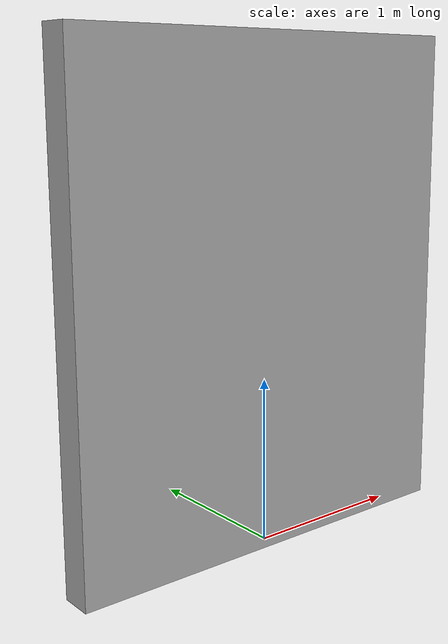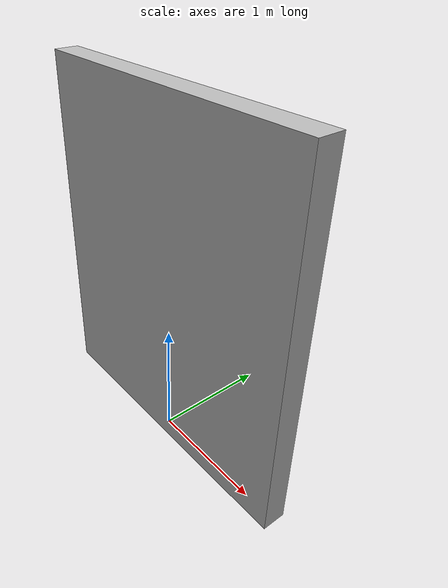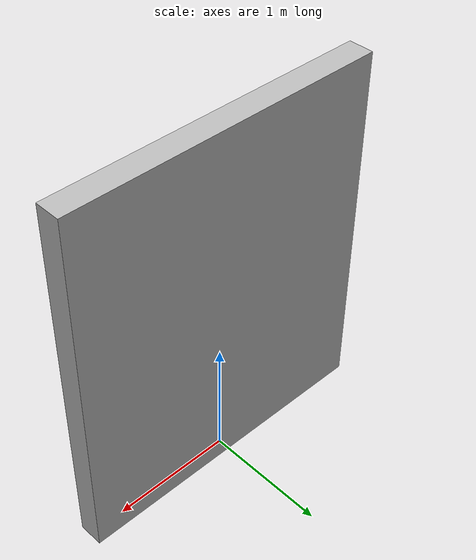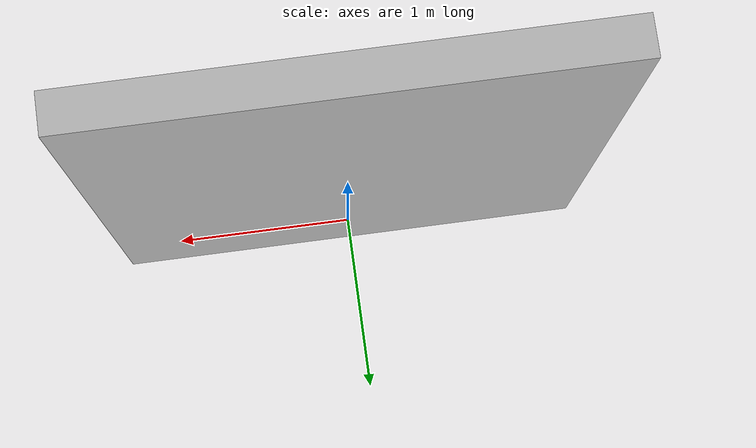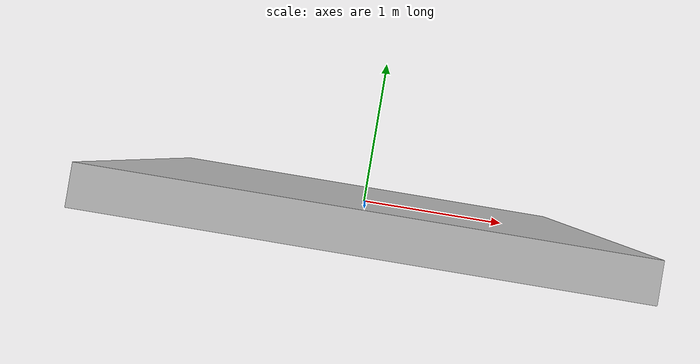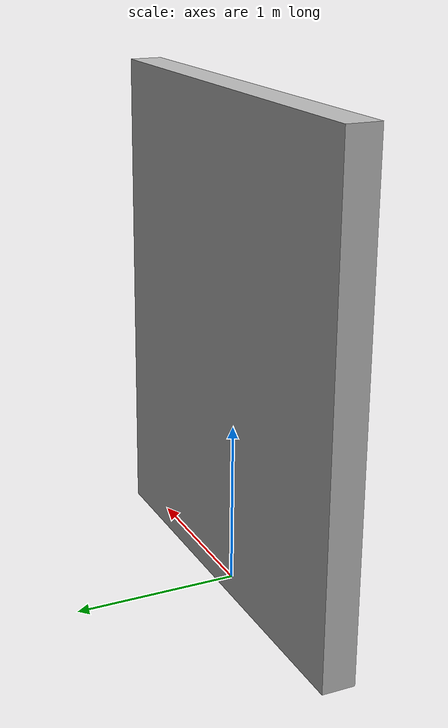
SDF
<?xml version="1.0" ?>
<sdf version="1.5">
  <model name="wall7">
    <static>true</static>
    <link name="chassis">
      <pose>0 0 1.5 0 0 0</pose>
      <collision name="collision">
        <geometry>
          <box>
            <size>2.6 0.2 3.0</size>
          </box>
        </geometry>
      </collision>
      <visual name="visual">
        <geometry>
          <mesh>
            <uri>model://wall7/meshes/simple_box.dae</uri>
            <scale>2.6 0.2 3.0</scale>
          </mesh>
        </geometry>
        <material>
          <script>
            <uri>model://wall7/materials/scripts</uri>
            <uri>model://wall7/materials/textures</uri>
            <name>wall7/Diffuse</name>
          </script>
        </material>
      </visual>
    </link>
  </model>
</sdf>
